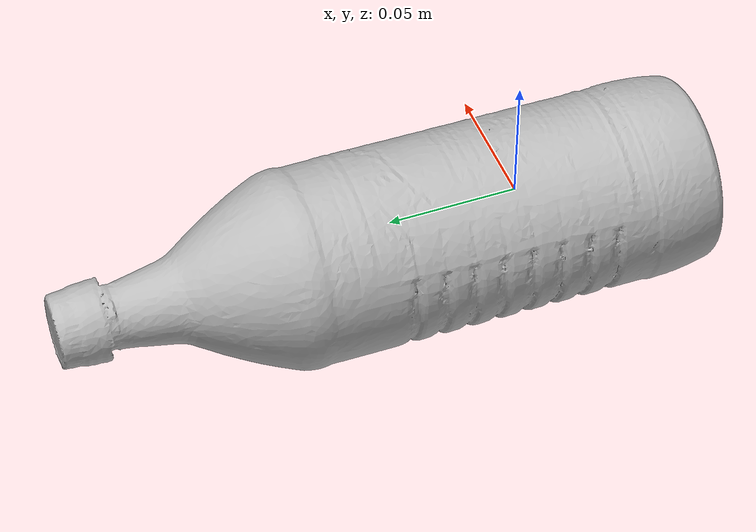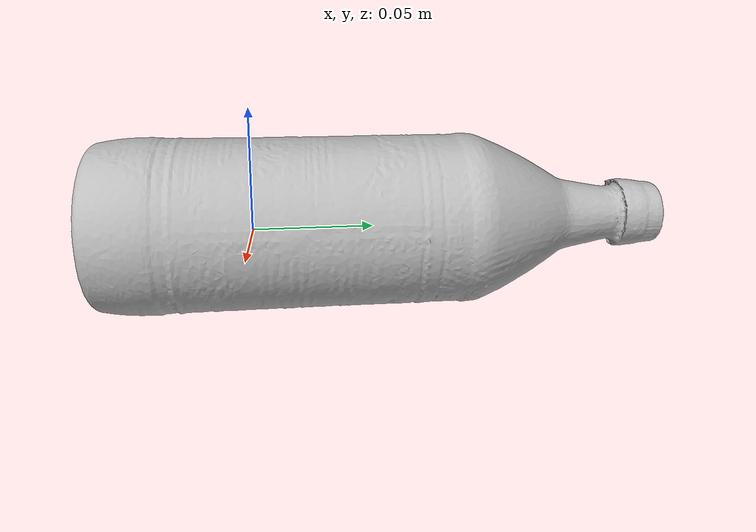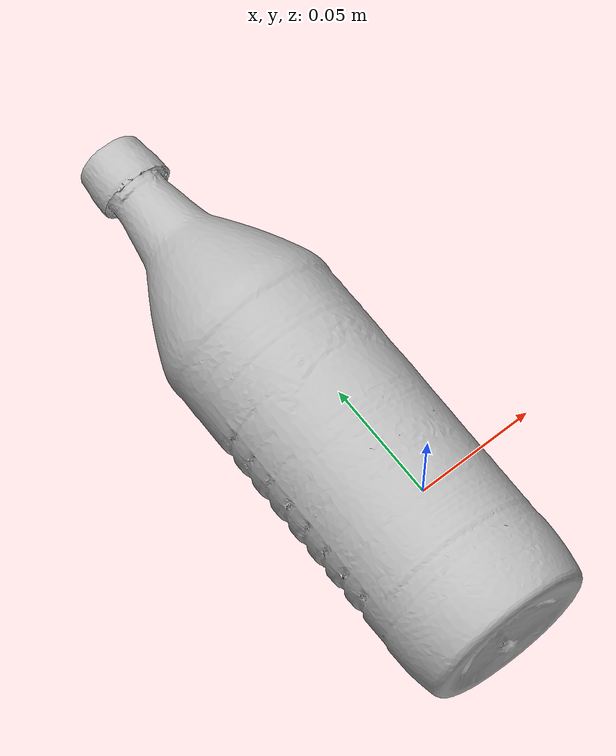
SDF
<?xml version='1.0'?>
<sdf version="1.4">
  <model name="MelforBottle">
    <static>false</static>
    <link name="link">
      <inertial>
        <pose>-0.010327261505477229 0.03844051920782342 0.00035716683819857626 -1.5596564897062875 -1.5032672177830204 -0.013851712488132899</pose>
        <mass>0.08807965010652434</mass>
        <inertia>
          <ixx>0.00035940461555090616</ixx>
          <ixy>9.34041459844933e-21</ixy>
          <ixz>2.0830122246603422e-22</ixz>
          <iyy>0.0003592585707856258</iyy>
          <iyz>-8.584959692855851e-23</iyz>
          <izz>5.622785746368892e-05</izz>
        </inertia>
      </inertial>
      <collision name="collision">
        <geometry>
          <mesh>
            <!-- Use a downsampled mesh for collisions -->
            <uri>model:///MelforBottle/MelforBottle_250_collision.obj</uri>
	        </mesh>
        </geometry>
        <surface>
      </surface>
      </collision>
      <visual name="visual">
        <geometry>
          <mesh>
            <uri>model:///MelforBottle/MelforBottle_25k_tex.obj</uri>
	        </mesh>
        </geometry>
        <material>
          <script>
            <uri>model:///MelforBottle/MelforBottle.material</uri>
            <name>MelforBottle</name>
          </script>
        </material>
      </visual>
    </link>
  </model>
</sdf>
